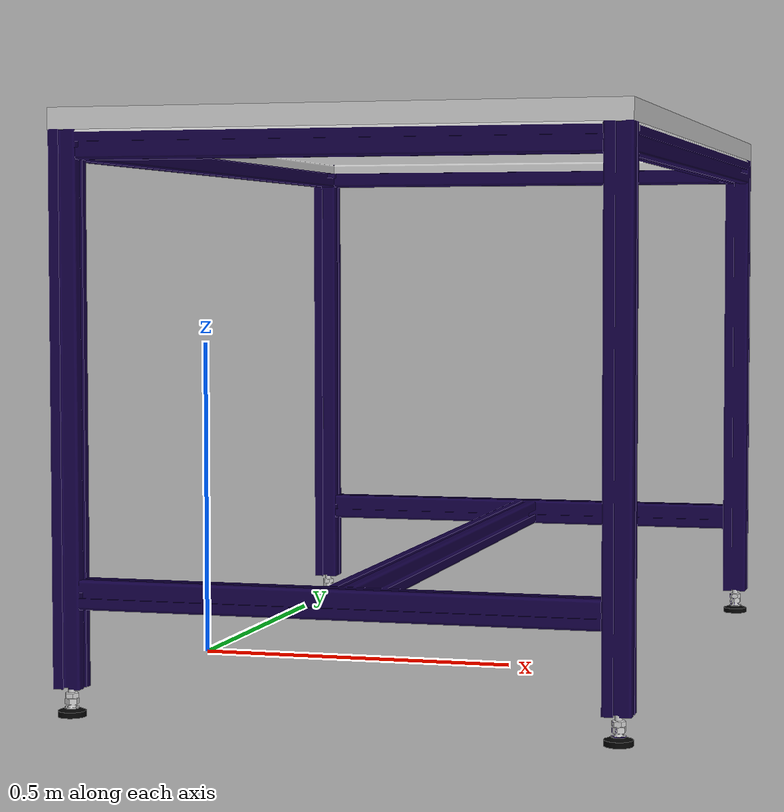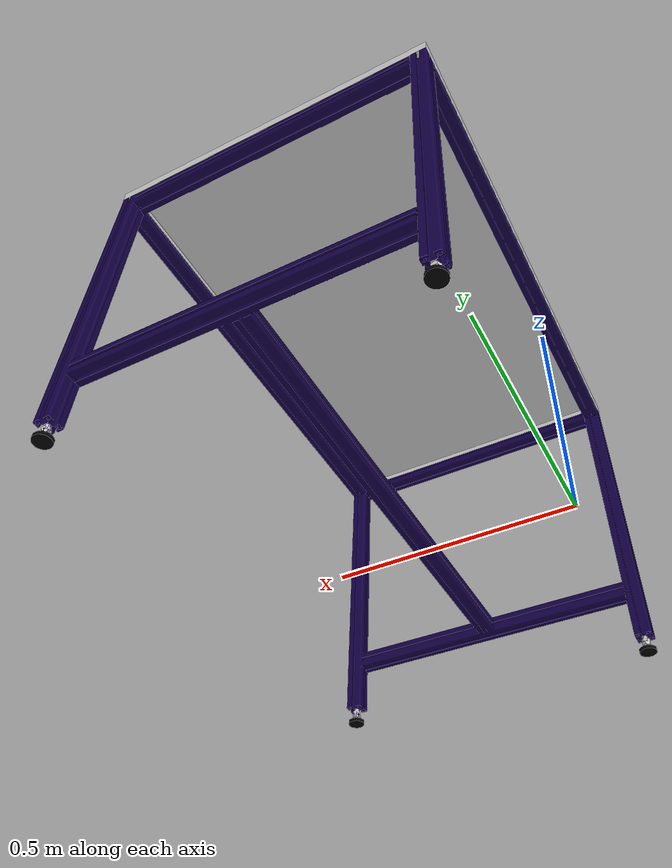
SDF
<sdf version='1.5'>
  <model name='table1'>
    <static>true</static>
    <link name='table1'>
      <pose frame=''>0 0 0 0 -0 0</pose>
      <inertial>
        <pose frame=''>0 0.04617 0.38 0 -0 0</pose>
        <mass>35.4321</mass>
        <inertia>
          <ixx>1.73083</ixx>
          <ixy>2.01582e-11</ixy>
          <ixz>2.78594e-13</ixz>
          <iyy>5.32936</iyy>
          <iyz>4.32952e-13</iyz>
          <izz>3.81098</izz>
        </inertia>
      </inertial>
      <collision name='table_collision'>
        <pose frame=''>0 0 0 0 -0 0</pose>
        <geometry>
          <mesh>
            <scale>1 1 1</scale>
            <uri>model://table1/meshes/table1.dae</uri>
          </mesh>
        </geometry>
      </collision>
      <visual name='table_visual'>
        <pose frame=''>0 0 0 0 -0 0</pose>
        <geometry>
          <mesh>
            <scale>1 1 1</scale>
            <uri>model://table1/meshes/table1.dae</uri>
          </mesh>
        </geometry>
      </visual>
    </link>
  </model>
</sdf>
